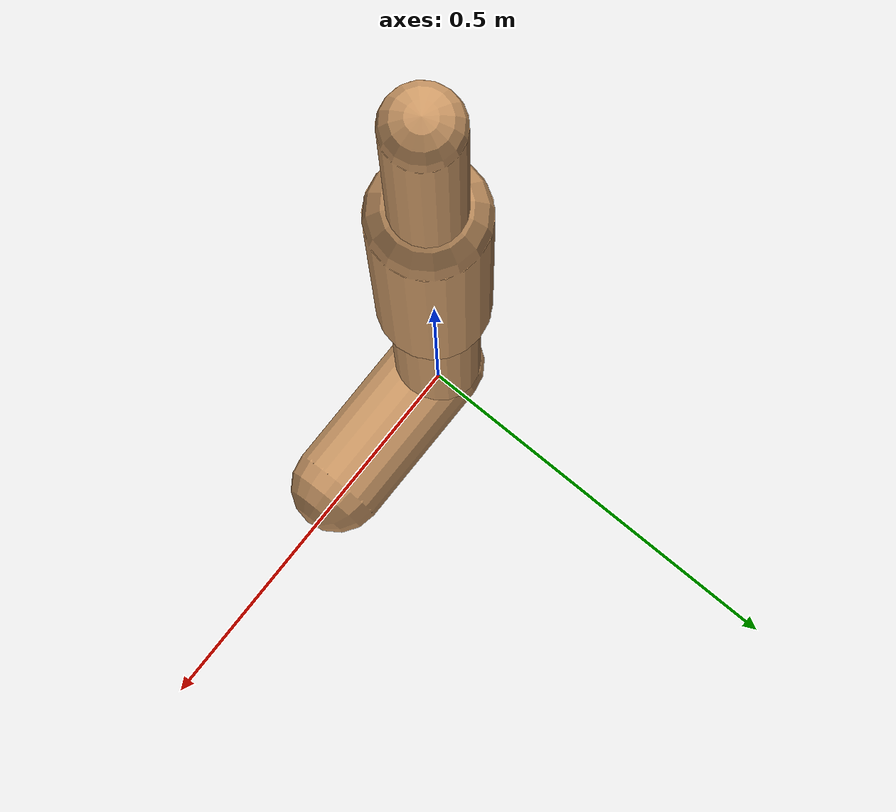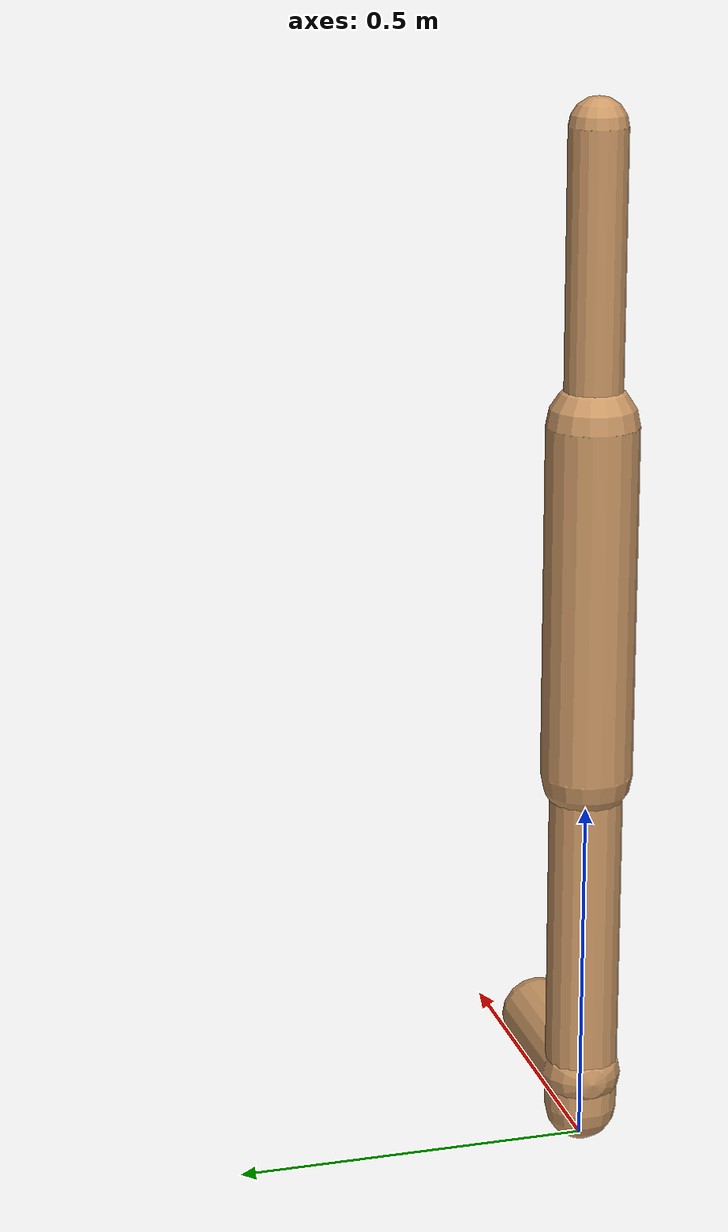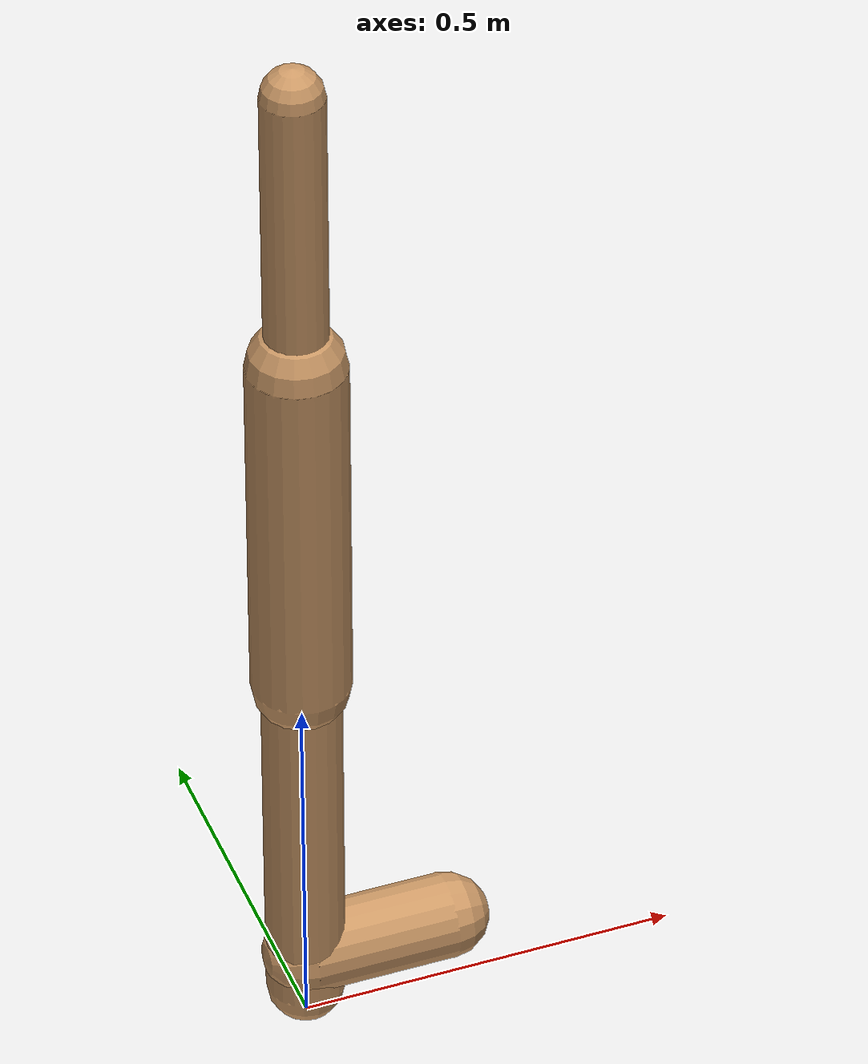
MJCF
<mujoco model="walker2d">
  <compiler angle="degree" coordinate="global" inertiafromgeom="true" />
  <default>
    <joint armature="0.01" damping=".1" limited="true" />
    <geom conaffinity="0" condim="3" contype="1" density="1000" friction="0.8 .1 .1" rgba="0.8 0.6 .4 1" />
  </default>
  <option integrator="RK4" timestep="0.002" />
  <worldbody>

    <body name="torso" pos="0 0 0.1001499980365655">
      <joint armature="0" axis="1 0 0" damping="0" limited="false" name="ignorex" pos="0 0 0" stiffness="0" type="slide" />
      <joint armature="0" axis="0 0 1" damping="0" limited="false" name="ignorez" pos="0 0 0" ref="1.25" stiffness="0" type="slide" />
      <joint armature="0" axis="0 1 0" damping="0" limited="false" name="ignorey" pos="0 0 0" stiffness="0" type="hinge" />
      <geom fromto="0 0 1.45 0 0 1.05" name="torso_geom" size="0.0404482274891552" type="capsule" />
      <body name="thigh">
        <joint axis="0 -1 0" name="thigh_joint" pos="0 0 1.05" range="-150 0" type="hinge" />
        <geom fromto="0.0 0.0 1.05 0.0 0.0 0.5525605272458374" name="thigh_geom" size="0.06419864465648013" type="capsule" />
        <body name="leg" pos="0.0 0.0 -0.047439472754162604">
          <joint axis="0 -1 0" name="leg_joint" pos="0 0 0.6" range="-150 0" type="hinge" />
          <geom fromto="0.0 0.0 0.6 0.0 0.0 0.04728947471759711" name="leg_geom" size="0.051358915725184105" type="capsule" />
          <body name="foot" pos="0.0 0.0 -0.052710525282402894">
            <joint axis="0 -1 0" name="foot_joint" pos="0 0 0.1" range="-45 45" type="hinge" />
            <geom fromto="0.0 0.0 0.1 0.1918394141684302 0.0 0.1" name="foot_geom" size="0.05646921082758353" type="capsule" />
          </body>
        </body>
      </body>

      <body name="thigh_left">
        <joint axis="0 -1 0" name="thigh_left_joint" pos="0 0 1.05" range="-150 0" type="hinge" />
        <geom fromto="0.0 0.0 1.05 0.0 0.0 0.5525605272458374" name="thigh_left_geom" rgba=".7 .3 .6 1" size="0.06419864465648013" type="capsule" />
        <body name="leg_left" pos="0.0 0.0 -0.047439472754162604">
          <joint axis="0 -1 0" name="leg_left_joint" pos="0 0 0.6" range="-150 0" type="hinge" />
          <geom fromto="0.0 0.0 0.6 0.0 0.0 0.04728947471759711" name="leg_left_geom" rgba=".7 .3 .6 1" size="0.051358915725184105" type="capsule" />
          <body name="foot_left" pos="0.0 0.0 -0.052710525282402894">
            <joint axis="0 -1 0" name="foot_left_joint" pos="0 0 0.1" range="-45 45" type="hinge" />
            <geom fromto="0.0 0.0 0.1 0.1918394141684302 0.0 0.1" name="foot_left_geom" rgba=".7 .3 .6 1" size="0.05646921082758353" type="capsule" />
          </body>
        </body>
      </body>
    </body>
  </worldbody>
  <actuator>

    <motor ctrllimited="true" ctrlrange="-1.0 1.0" gear="100" joint="thigh_joint" />
    <motor ctrllimited="true" ctrlrange="-1.0 1.0" gear="100" joint="leg_joint" />
    <motor ctrllimited="true" ctrlrange="-1.0 1.0" gear="100" joint="foot_joint" />
    <motor ctrllimited="true" ctrlrange="-1.0 1.0" gear="100" joint="thigh_left_joint" />
    <motor ctrllimited="true" ctrlrange="-1.0 1.0" gear="100" joint="leg_left_joint" />
    <motor ctrllimited="true" ctrlrange="-1.0 1.0" gear="100" joint="foot_left_joint" />

  </actuator>
</mujoco>
